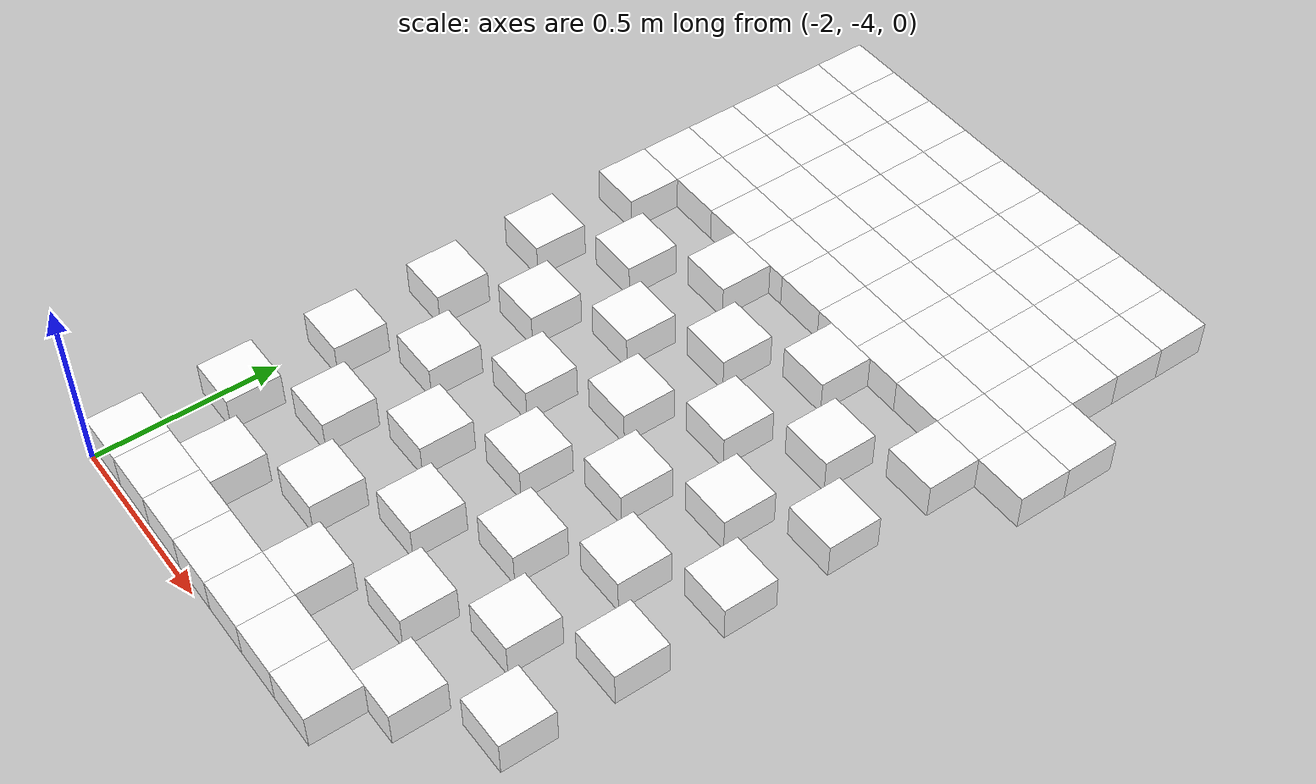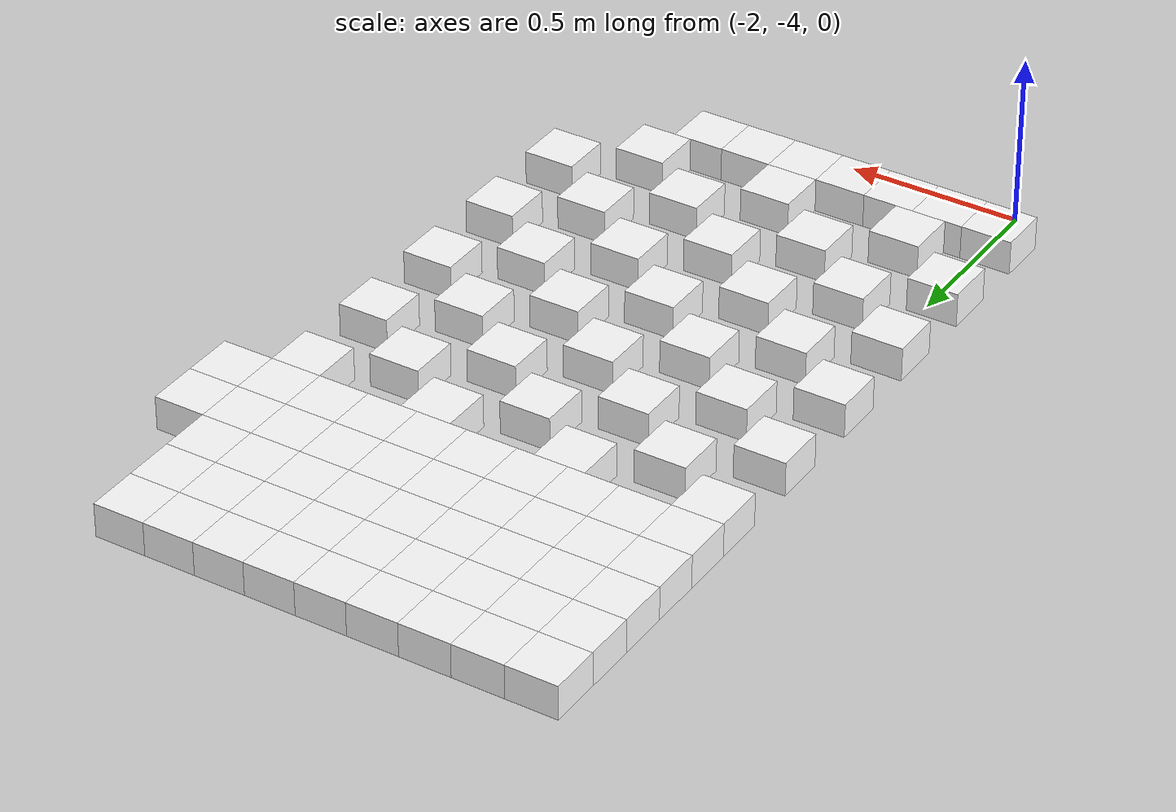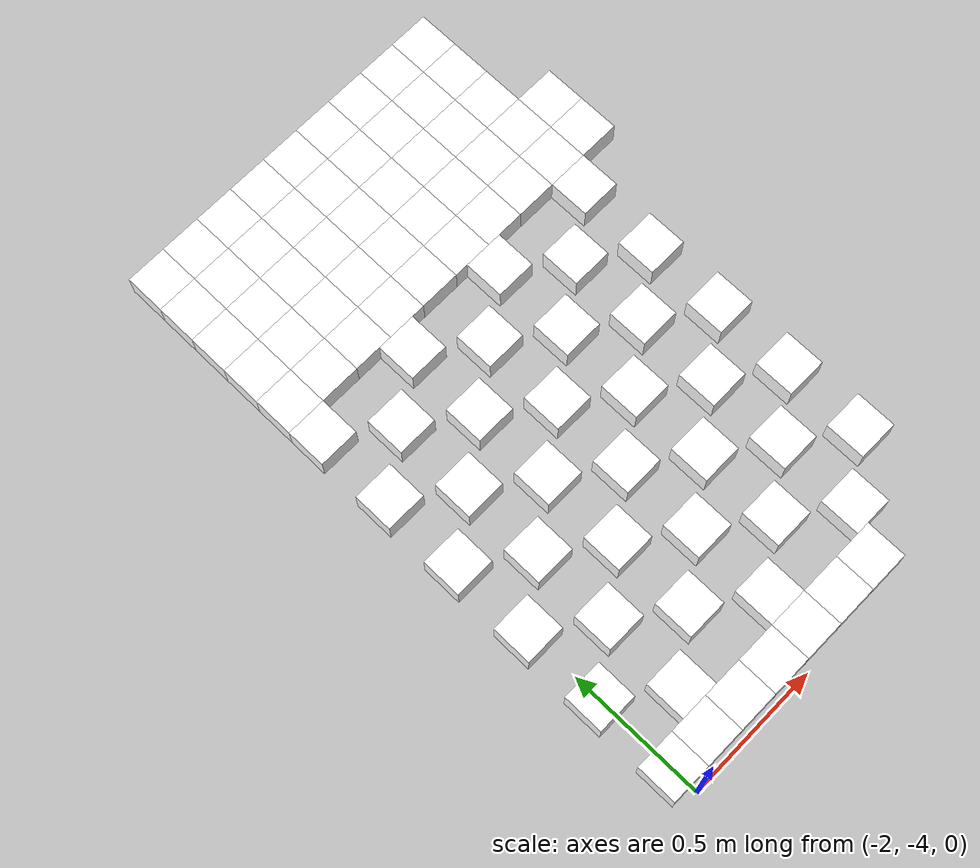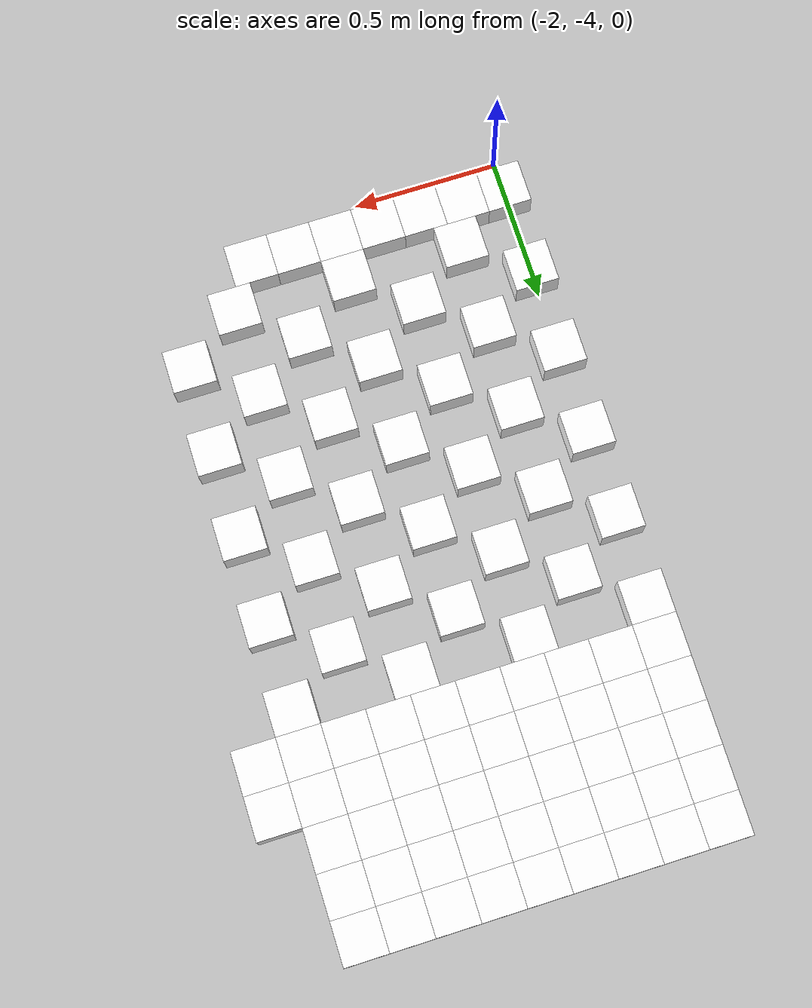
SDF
<sdf version="1.7">
 <world name="default">
  <include><uri>model://sun</uri></include>
  <model name="static_environment">
   <static>true</static>
   <link name="region_15">
    <pose>-2.0002002058652883 -1.6499999910928018 0.0 0.0 0.0 4.7123</pose>
    <collision name="region_15_collision">
     <geometry><box><size>0.15 0.15 0.1</size></box></geometry>
     <surface><friction><ode><mu>1.0</mu><mu2>1.0</mu2></ode></friction></surface>
    </collision>
    <visual name="region_15_visual">
     <geometry><box><size>0.15 0.15 0.1</size></box></geometry>
     <material><ambient>1.0 1.0 1.0 1.0</ambient><diffuse>1.0 1.0 1.0 1.0</diffuse></material>
    </visual>
   </link>
   <link name="region_16">
    <pose>-2.000213552922974 -1.7999999904989887 0.0 0.0 0.0 4.7123</pose>
    <collision name="region_16_collision">
     <geometry><box><size>0.15 0.15 0.1</size></box></geometry>
     <surface><friction><ode><mu>1.0</mu><mu2>1.0</mu2></ode></friction></surface>
    </collision>
    <visual name="region_16_visual">
     <geometry><box><size>0.15 0.15 0.1</size></box></geometry>
     <material><ambient>1.0 1.0 1.0 1.0</ambient><diffuse>1.0 1.0 1.0 1.0</diffuse></material>
    </visual>
   </link>
   <link name="region_17">
    <pose>-2.00022689998066 -1.9499999899051756 0.0 0.0 0.0 4.7123</pose>
    <collision name="region_17_collision">
     <geometry><box><size>0.15 0.15 0.1</size></box></geometry>
     <surface><friction><ode><mu>1.0</mu><mu2>1.0</mu2></ode></friction></surface>
    </collision>
    <visual name="region_17_visual">
     <geometry><box><size>0.15 0.15 0.1</size></box></geometry>
     <material><ambient>1.0 1.0 1.0 1.0</ambient><diffuse>1.0 1.0 1.0 1.0</diffuse></material>
    </visual>
   </link>
   <link name="region_18">
    <pose>-2.0002402470383456 -2.099999989311362 0.0 0.0 0.0 4.7123</pose>
    <collision name="region_18_collision">
     <geometry><box><size>0.15 0.15 0.1</size></box></geometry>
     <surface><friction><ode><mu>1.0</mu><mu2>1.0</mu2></ode></friction></surface>
    </collision>
    <visual name="region_18_visual">
     <geometry><box><size>0.15 0.15 0.1</size></box></geometry>
     <material><ambient>1.0 1.0 1.0 1.0</ambient><diffuse>1.0 1.0 1.0 1.0</diffuse></material>
    </visual>
   </link>
   <link name="region_19">
    <pose>-2.0002535940960318 -2.249999988717549 0.0 0.0 0.0 4.7123</pose>
    <collision name="region_19_collision">
     <geometry><box><size>0.15 0.15 0.1</size></box></geometry>
     <surface><friction><ode><mu>1.0</mu><mu2>1.0</mu2></ode></friction></surface>
    </collision>
    <visual name="region_19_visual">
     <geometry><box><size>0.15 0.15 0.1</size></box></geometry>
     <material><ambient>1.0 1.0 1.0 1.0</ambient><diffuse>1.0 1.0 1.0 1.0</diffuse></material>
    </visual>
   </link>
   <link name="region_35">
    <pose>-1.8502002064591012 -1.6500133381504876 0.0 0.0 0.0 4.7123</pose>
    <collision name="region_35_collision">
     <geometry><box><size>0.15 0.15 0.1</size></box></geometry>
     <surface><friction><ode><mu>1.0</mu><mu2>1.0</mu2></ode></friction></surface>
    </collision>
    <visual name="region_35_visual">
     <geometry><box><size>0.15 0.15 0.1</size></box></geometry>
     <material><ambient>1.0 1.0 1.0 1.0</ambient><diffuse>1.0 1.0 1.0 1.0</diffuse></material>
    </visual>
   </link>
   <link name="region_36">
    <pose>-1.8502135535167872 -1.8000133375566745 0.0 0.0 0.0 4.7123</pose>
    <collision name="region_36_collision">
     <geometry><box><size>0.15 0.15 0.1</size></box></geometry>
     <surface><friction><ode><mu>1.0</mu><mu2>1.0</mu2></ode></friction></surface>
    </collision>
    <visual name="region_36_visual">
     <geometry><box><size>0.15 0.15 0.1</size></box></geometry>
     <material><ambient>1.0 1.0 1.0 1.0</ambient><diffuse>1.0 1.0 1.0 1.0</diffuse></material>
    </visual>
   </link>
   <link name="region_37">
    <pose>-1.8502269005744731 -1.9500133369628614 0.0 0.0 0.0 4.7123</pose>
    <collision name="region_37_collision">
     <geometry><box><size>0.15 0.15 0.1</size></box></geometry>
     <surface><friction><ode><mu>1.0</mu><mu2>1.0</mu2></ode></friction></surface>
    </collision>
    <visual name="region_37_visual">
     <geometry><box><size>0.15 0.15 0.1</size></box></geometry>
     <material><ambient>1.0 1.0 1.0 1.0</ambient><diffuse>1.0 1.0 1.0 1.0</diffuse></material>
    </visual>
   </link>
   <link name="region_38">
    <pose>-1.8502402476321589 -2.100013336369048 0.0 0.0 0.0 4.7123</pose>
    <collision name="region_38_collision">
     <geometry><box><size>0.15 0.15 0.1</size></box></geometry>
     <surface><friction><ode><mu>1.0</mu><mu2>1.0</mu2></ode></friction></surface>
    </collision>
    <visual name="region_38_visual">
     <geometry><box><size>0.15 0.15 0.1</size></box></geometry>
     <material><ambient>1.0 1.0 1.0 1.0</ambient><diffuse>1.0 1.0 1.0 1.0</diffuse></material>
    </visual>
   </link>
   <link name="region_39">
    <pose>-1.8502535946898448 -2.2500133357752348 0.0 0.0 0.0 4.7123</pose>
    <collision name="region_39_collision">
     <geometry><box><size>0.15 0.15 0.1</size></box></geometry>
     <surface><friction><ode><mu>1.0</mu><mu2>1.0</mu2></ode></friction></surface>
    </collision>
    <visual name="region_39_visual">
     <geometry><box><size>0.15 0.15 0.1</size></box></geometry>
     <material><ambient>1.0 1.0 1.0 1.0</ambient><diffuse>1.0 1.0 1.0 1.0</diffuse></material>
    </visual>
   </link>
   <link name="region_55">
    <pose>-1.7002002070529145 -1.6500266852081737 0.0 0.0 0.0 4.7123</pose>
    <collision name="region_55_collision">
     <geometry><box><size>0.15 0.15 0.1</size></box></geometry>
     <surface><friction><ode><mu>1.0</mu><mu2>1.0</mu2></ode></friction></surface>
    </collision>
    <visual name="region_55_visual">
     <geometry><box><size>0.15 0.15 0.1</size></box></geometry>
     <material><ambient>1.0 1.0 1.0 1.0</ambient><diffuse>1.0 1.0 1.0 1.0</diffuse></material>
    </visual>
   </link>
   <link name="region_56">
    <pose>-1.7002135541106003 -1.8000266846143607 0.0 0.0 0.0 4.7123</pose>
    <collision name="region_56_collision">
     <geometry><box><size>0.15 0.15 0.1</size></box></geometry>
     <surface><friction><ode><mu>1.0</mu><mu2>1.0</mu2></ode></friction></surface>
    </collision>
    <visual name="region_56_visual">
     <geometry><box><size>0.15 0.15 0.1</size></box></geometry>
     <material><ambient>1.0 1.0 1.0 1.0</ambient><diffuse>1.0 1.0 1.0 1.0</diffuse></material>
    </visual>
   </link>
   <link name="region_57">
    <pose>-1.7002269011682862 -1.9500266840205476 0.0 0.0 0.0 4.7123</pose>
    <collision name="region_57_collision">
     <geometry><box><size>0.15 0.15 0.1</size></box></geometry>
     <surface><friction><ode><mu>1.0</mu><mu2>1.0</mu2></ode></friction></surface>
    </collision>
    <visual name="region_57_visual">
     <geometry><box><size>0.15 0.15 0.1</size></box></geometry>
     <material><ambient>1.0 1.0 1.0 1.0</ambient><diffuse>1.0 1.0 1.0 1.0</diffuse></material>
    </visual>
   </link>
   <link name="region_58">
    <pose>-1.7002402482259722 -2.100026683426734 0.0 0.0 0.0 4.7123</pose>
    <collision name="region_58_collision">
     <geometry><box><size>0.15 0.15 0.1</size></box></geometry>
     <surface><friction><ode><mu>1.0</mu><mu2>1.0</mu2></ode></friction></surface>
    </collision>
    <visual name="region_58_visual">
     <geometry><box><size>0.15 0.15 0.1</size></box></geometry>
     <material><ambient>1.0 1.0 1.0 1.0</ambient><diffuse>1.0 1.0 1.0 1.0</diffuse></material>
    </visual>
   </link>
   <link name="region_59">
    <pose>-1.700253595283658 -2.250026682832921 0.0 0.0 0.0 4.7123</pose>
    <collision name="region_59_collision">
     <geometry><box><size>0.15 0.15 0.1</size></box></geometry>
     <surface><friction><ode><mu>1.0</mu><mu2>1.0</mu2></ode></friction></surface>
    </collision>
    <visual name="region_59_visual">
     <geometry><box><size>0.15 0.15 0.1</size></box></geometry>
     <material><ambient>1.0 1.0 1.0 1.0</ambient><diffuse>1.0 1.0 1.0 1.0</diffuse></material>
    </visual>
   </link>
   <link name="region_75">
    <pose>-1.5502002076467276 -1.6500400322658595 0.0 0.0 0.0 4.7123</pose>
    <collision name="region_75_collision">
     <geometry><box><size>0.15 0.15 0.1</size></box></geometry>
     <surface><friction><ode><mu>1.0</mu><mu2>1.0</mu2></ode></friction></surface>
    </collision>
    <visual name="region_75_visual">
     <geometry><box><size>0.15 0.15 0.1</size></box></geometry>
     <material><ambient>1.0 1.0 1.0 1.0</ambient><diffuse>1.0 1.0 1.0 1.0</diffuse></material>
    </visual>
   </link>
   <link name="region_76">
    <pose>-1.5502135547044136 -1.8000400316720464 0.0 0.0 0.0 4.7123</pose>
    <collision name="region_76_collision">
     <geometry><box><size>0.15 0.15 0.1</size></box></geometry>
     <surface><friction><ode><mu>1.0</mu><mu2>1.0</mu2></ode></friction></surface>
    </collision>
    <visual name="region_76_visual">
     <geometry><box><size>0.15 0.15 0.1</size></box></geometry>
     <material><ambient>1.0 1.0 1.0 1.0</ambient><diffuse>1.0 1.0 1.0 1.0</diffuse></material>
    </visual>
   </link>
   <link name="region_77">
    <pose>-1.5502269017620995 -1.9500400310782333 0.0 0.0 0.0 4.7123</pose>
    <collision name="region_77_collision">
     <geometry><box><size>0.15 0.15 0.1</size></box></geometry>
     <surface><friction><ode><mu>1.0</mu><mu2>1.0</mu2></ode></friction></surface>
    </collision>
    <visual name="region_77_visual">
     <geometry><box><size>0.15 0.15 0.1</size></box></geometry>
     <material><ambient>1.0 1.0 1.0 1.0</ambient><diffuse>1.0 1.0 1.0 1.0</diffuse></material>
    </visual>
   </link>
   <link name="region_78">
    <pose>-1.5502402488197853 -2.10004003048442 0.0 0.0 0.0 4.7123</pose>
    <collision name="region_78_collision">
     <geometry><box><size>0.15 0.15 0.1</size></box></geometry>
     <surface><friction><ode><mu>1.0</mu><mu2>1.0</mu2></ode></friction></surface>
    </collision>
    <visual name="region_78_visual">
     <geometry><box><size>0.15 0.15 0.1</size></box></geometry>
     <material><ambient>1.0 1.0 1.0 1.0</ambient><diffuse>1.0 1.0 1.0 1.0</diffuse></material>
    </visual>
   </link>
   <link name="region_79">
    <pose>-1.5502535958774712 -2.2500400298906067 0.0 0.0 0.0 4.7123</pose>
    <collision name="region_79_collision">
     <geometry><box><size>0.15 0.15 0.1</size></box></geometry>
     <surface><friction><ode><mu>1.0</mu><mu2>1.0</mu2></ode></friction></surface>
    </collision>
    <visual name="region_79_visual">
     <geometry><box><size>0.15 0.15 0.1</size></box></geometry>
     <material><ambient>1.0 1.0 1.0 1.0</ambient><diffuse>1.0 1.0 1.0 1.0</diffuse></material>
    </visual>
   </link>
   <link name="region_95">
    <pose>-1.4002002082405407 -1.6500533793235452 0.0 0.0 0.0 4.7123</pose>
    <collision name="region_95_collision">
     <geometry><box><size>0.15 0.15 0.1</size></box></geometry>
     <surface><friction><ode><mu>1.0</mu><mu2>1.0</mu2></ode></friction></surface>
    </collision>
    <visual name="region_95_visual">
     <geometry><box><size>0.15 0.15 0.1</size></box></geometry>
     <material><ambient>1.0 1.0 1.0 1.0</ambient><diffuse>1.0 1.0 1.0 1.0</diffuse></material>
    </visual>
   </link>
   <link name="region_96">
    <pose>-1.4002135552982267 -1.8000533787297321 0.0 0.0 0.0 4.7123</pose>
    <collision name="region_96_collision">
     <geometry><box><size>0.15 0.15 0.1</size></box></geometry>
     <surface><friction><ode><mu>1.0</mu><mu2>1.0</mu2></ode></friction></surface>
    </collision>
    <visual name="region_96_visual">
     <geometry><box><size>0.15 0.15 0.1</size></box></geometry>
     <material><ambient>1.0 1.0 1.0 1.0</ambient><diffuse>1.0 1.0 1.0 1.0</diffuse></material>
    </visual>
   </link>
   <link name="region_97">
    <pose>-1.4002269023559126 -1.950053378135919 0.0 0.0 0.0 4.7123</pose>
    <collision name="region_97_collision">
     <geometry><box><size>0.15 0.15 0.1</size></box></geometry>
     <surface><friction><ode><mu>1.0</mu><mu2>1.0</mu2></ode></friction></surface>
    </collision>
    <visual name="region_97_visual">
     <geometry><box><size>0.15 0.15 0.1</size></box></geometry>
     <material><ambient>1.0 1.0 1.0 1.0</ambient><diffuse>1.0 1.0 1.0 1.0</diffuse></material>
    </visual>
   </link>
   <link name="region_98">
    <pose>-1.4002402494135984 -2.1000533775421055 0.0 0.0 0.0 4.7123</pose>
    <collision name="region_98_collision">
     <geometry><box><size>0.15 0.15 0.1</size></box></geometry>
     <surface><friction><ode><mu>1.0</mu><mu2>1.0</mu2></ode></friction></surface>
    </collision>
    <visual name="region_98_visual">
     <geometry><box><size>0.15 0.15 0.1</size></box></geometry>
     <material><ambient>1.0 1.0 1.0 1.0</ambient><diffuse>1.0 1.0 1.0 1.0</diffuse></material>
    </visual>
   </link>
   <link name="region_99">
    <pose>-1.4002535964712843 -2.2500533769482924 0.0 0.0 0.0 4.7123</pose>
    <collision name="region_99_collision">
     <geometry><box><size>0.15 0.15 0.1</size></box></geometry>
     <surface><friction><ode><mu>1.0</mu><mu2>1.0</mu2></ode></friction></surface>
    </collision>
    <visual name="region_99_visual">
     <geometry><box><size>0.15 0.15 0.1</size></box></geometry>
     <material><ambient>1.0 1.0 1.0 1.0</ambient><diffuse>1.0 1.0 1.0 1.0</diffuse></material>
    </visual>
   </link>
   <link name="region_115">
    <pose>-1.250200208834354 -1.6500667263812314 0.0 0.0 0.0 4.7123</pose>
    <collision name="region_115_collision">
     <geometry><box><size>0.15 0.15 0.1</size></box></geometry>
     <surface><friction><ode><mu>1.0</mu><mu2>1.0</mu2></ode></friction></surface>
    </collision>
    <visual name="region_115_visual">
     <geometry><box><size>0.15 0.15 0.1</size></box></geometry>
     <material><ambient>1.0 1.0 1.0 1.0</ambient><diffuse>1.0 1.0 1.0 1.0</diffuse></material>
    </visual>
   </link>
   <link name="region_116">
    <pose>-1.25021355589204 -1.8000667257874183 0.0 0.0 0.0 4.7123</pose>
    <collision name="region_116_collision">
     <geometry><box><size>0.15 0.15 0.1</size></box></geometry>
     <surface><friction><ode><mu>1.0</mu><mu2>1.0</mu2></ode></friction></surface>
    </collision>
    <visual name="region_116_visual">
     <geometry><box><size>0.15 0.15 0.1</size></box></geometry>
     <material><ambient>1.0 1.0 1.0 1.0</ambient><diffuse>1.0 1.0 1.0 1.0</diffuse></material>
    </visual>
   </link>
   <link name="region_117">
    <pose>-1.2502269029497257 -1.9500667251936052 0.0 0.0 0.0 4.7123</pose>
    <collision name="region_117_collision">
     <geometry><box><size>0.15 0.15 0.1</size></box></geometry>
     <surface><friction><ode><mu>1.0</mu><mu2>1.0</mu2></ode></friction></surface>
    </collision>
    <visual name="region_117_visual">
     <geometry><box><size>0.15 0.15 0.1</size></box></geometry>
     <material><ambient>1.0 1.0 1.0 1.0</ambient><diffuse>1.0 1.0 1.0 1.0</diffuse></material>
    </visual>
   </link>
   <link name="region_118">
    <pose>-1.2502402500074117 -2.1000667245997917 0.0 0.0 0.0 4.7123</pose>
    <collision name="region_118_collision">
     <geometry><box><size>0.15 0.15 0.1</size></box></geometry>
     <surface><friction><ode><mu>1.0</mu><mu2>1.0</mu2></ode></friction></surface>
    </collision>
    <visual name="region_118_visual">
     <geometry><box><size>0.15 0.15 0.1</size></box></geometry>
     <material><ambient>1.0 1.0 1.0 1.0</ambient><diffuse>1.0 1.0 1.0 1.0</diffuse></material>
    </visual>
   </link>
   <link name="region_119">
    <pose>-1.2502535970650976 -2.2500667240059786 0.0 0.0 0.0 4.7123</pose>
    <collision name="region_119_collision">
     <geometry><box><size>0.15 0.15 0.1</size></box></geometry>
     <surface><friction><ode><mu>1.0</mu><mu2>1.0</mu2></ode></friction></surface>
    </collision>
    <visual name="region_119_visual">
     <geometry><box><size>0.15 0.15 0.1</size></box></geometry>
     <material><ambient>1.0 1.0 1.0 1.0</ambient><diffuse>1.0 1.0 1.0 1.0</diffuse></material>
    </visual>
   </link>
   <link name="region_135">
    <pose>-1.100200209428167 -1.6500800734389172 0.0 0.0 0.0 4.7123</pose>
    <collision name="region_135_collision">
     <geometry><box><size>0.15 0.15 0.1</size></box></geometry>
     <surface><friction><ode><mu>1.0</mu><mu2>1.0</mu2></ode></friction></surface>
    </collision>
    <visual name="region_135_visual">
     <geometry><box><size>0.15 0.15 0.1</size></box></geometry>
     <material><ambient>1.0 1.0 1.0 1.0</ambient><diffuse>1.0 1.0 1.0 1.0</diffuse></material>
    </visual>
   </link>
   <link name="region_136">
    <pose>-1.100213556485853 -1.800080072845104 0.0 0.0 0.0 4.7123</pose>
    <collision name="region_136_collision">
     <geometry><box><size>0.15 0.15 0.1</size></box></geometry>
     <surface><friction><ode><mu>1.0</mu><mu2>1.0</mu2></ode></friction></surface>
    </collision>
    <visual name="region_136_visual">
     <geometry><box><size>0.15 0.15 0.1</size></box></geometry>
     <material><ambient>1.0 1.0 1.0 1.0</ambient><diffuse>1.0 1.0 1.0 1.0</diffuse></material>
    </visual>
   </link>
   <link name="region_137">
    <pose>-1.1002269035435388 -1.950080072251291 0.0 0.0 0.0 4.7123</pose>
    <collision name="region_137_collision">
     <geometry><box><size>0.15 0.15 0.1</size></box></geometry>
     <surface><friction><ode><mu>1.0</mu><mu2>1.0</mu2></ode></friction></surface>
    </collision>
    <visual name="region_137_visual">
     <geometry><box><size>0.15 0.15 0.1</size></box></geometry>
     <material><ambient>1.0 1.0 1.0 1.0</ambient><diffuse>1.0 1.0 1.0 1.0</diffuse></material>
    </visual>
   </link>
   <link name="region_138">
    <pose>-1.1002402506012248 -2.1000800716574775 0.0 0.0 0.0 4.7123</pose>
    <collision name="region_138_collision">
     <geometry><box><size>0.15 0.15 0.1</size></box></geometry>
     <surface><friction><ode><mu>1.0</mu><mu2>1.0</mu2></ode></friction></surface>
    </collision>
    <visual name="region_138_visual">
     <geometry><box><size>0.15 0.15 0.1</size></box></geometry>
     <material><ambient>1.0 1.0 1.0 1.0</ambient><diffuse>1.0 1.0 1.0 1.0</diffuse></material>
    </visual>
   </link>
   <link name="region_139">
    <pose>-1.1002535976589107 -2.2500800710636644 0.0 0.0 0.0 4.7123</pose>
    <collision name="region_139_collision">
     <geometry><box><size>0.15 0.15 0.1</size></box></geometry>
     <surface><friction><ode><mu>1.0</mu><mu2>1.0</mu2></ode></friction></surface>
    </collision>
    <visual name="region_139_visual">
     <geometry><box><size>0.15 0.15 0.1</size></box></geometry>
     <material><ambient>1.0 1.0 1.0 1.0</ambient><diffuse>1.0 1.0 1.0 1.0</diffuse></material>
    </visual>
   </link>
   <link name="region_155">
    <pose>-0.9502002100219802 -1.650093420496603 0.0 0.0 0.0 4.7123</pose>
    <collision name="region_155_collision">
     <geometry><box><size>0.15 0.15 0.1</size></box></geometry>
     <surface><friction><ode><mu>1.0</mu><mu2>1.0</mu2></ode></friction></surface>
    </collision>
    <visual name="region_155_visual">
     <geometry><box><size>0.15 0.15 0.1</size></box></geometry>
     <material><ambient>1.0 1.0 1.0 1.0</ambient><diffuse>1.0 1.0 1.0 1.0</diffuse></material>
    </visual>
   </link>
   <link name="region_156">
    <pose>-0.9502135570796661 -1.8000934199027898 0.0 0.0 0.0 4.7123</pose>
    <collision name="region_156_collision">
     <geometry><box><size>0.15 0.15 0.1</size></box></geometry>
     <surface><friction><ode><mu>1.0</mu><mu2>1.0</mu2></ode></friction></surface>
    </collision>
    <visual name="region_156_visual">
     <geometry><box><size>0.15 0.15 0.1</size></box></geometry>
     <material><ambient>1.0 1.0 1.0 1.0</ambient><diffuse>1.0 1.0 1.0 1.0</diffuse></material>
    </visual>
   </link>
   <link name="region_157">
    <pose>-0.9502269041373519 -1.9500934193089767 0.0 0.0 0.0 4.7123</pose>
    <collision name="region_157_collision">
     <geometry><box><size>0.15 0.15 0.1</size></box></geometry>
     <surface><friction><ode><mu>1.0</mu><mu2>1.0</mu2></ode></friction></surface>
    </collision>
    <visual name="region_157_visual">
     <geometry><box><size>0.15 0.15 0.1</size></box></geometry>
     <material><ambient>1.0 1.0 1.0 1.0</ambient><diffuse>1.0 1.0 1.0 1.0</diffuse></material>
    </visual>
   </link>
   <link name="region_158">
    <pose>-0.9502402511950379 -2.100093418715163 0.0 0.0 0.0 4.7123</pose>
    <collision name="region_158_collision">
     <geometry><box><size>0.15 0.15 0.1</size></box></geometry>
     <surface><friction><ode><mu>1.0</mu><mu2>1.0</mu2></ode></friction></surface>
    </collision>
    <visual name="region_158_visual">
     <geometry><box><size>0.15 0.15 0.1</size></box></geometry>
     <material><ambient>1.0 1.0 1.0 1.0</ambient><diffuse>1.0 1.0 1.0 1.0</diffuse></material>
    </visual>
   </link>
   <link name="region_159">
    <pose>-0.9502535982527236 -2.25009341812135 0.0 0.0 0.0 4.7123</pose>
    <collision name="region_159_collision">
     <geometry><box><size>0.15 0.15 0.1</size></box></geometry>
     <surface><friction><ode><mu>1.0</mu><mu2>1.0</mu2></ode></friction></surface>
    </collision>
    <visual name="region_159_visual">
     <geometry><box><size>0.15 0.15 0.1</size></box></geometry>
     <material><ambient>1.0 1.0 1.0 1.0</ambient><diffuse>1.0 1.0 1.0 1.0</diffuse></material>
    </visual>
   </link>
   <link name="region_175">
    <pose>-0.8002002106157935 -1.6501067675542886 0.0 0.0 0.0 4.7123</pose>
    <collision name="region_175_collision">
     <geometry><box><size>0.15 0.15 0.1</size></box></geometry>
     <surface><friction><ode><mu>1.0</mu><mu2>1.0</mu2></ode></friction></surface>
    </collision>
    <visual name="region_175_visual">
     <geometry><box><size>0.15 0.15 0.1</size></box></geometry>
     <material><ambient>1.0 1.0 1.0 1.0</ambient><diffuse>1.0 1.0 1.0 1.0</diffuse></material>
    </visual>
   </link>
   <link name="region_176">
    <pose>-0.8002135576734795 -1.8001067669604756 0.0 0.0 0.0 4.7123</pose>
    <collision name="region_176_collision">
     <geometry><box><size>0.15 0.15 0.1</size></box></geometry>
     <surface><friction><ode><mu>1.0</mu><mu2>1.0</mu2></ode></friction></surface>
    </collision>
    <visual name="region_176_visual">
     <geometry><box><size>0.15 0.15 0.1</size></box></geometry>
     <material><ambient>1.0 1.0 1.0 1.0</ambient><diffuse>1.0 1.0 1.0 1.0</diffuse></material>
    </visual>
   </link>
   <link name="region_177">
    <pose>-0.8002269047311652 -1.9501067663666625 0.0 0.0 0.0 4.7123</pose>
    <collision name="region_177_collision">
     <geometry><box><size>0.15 0.15 0.1</size></box></geometry>
     <surface><friction><ode><mu>1.0</mu><mu2>1.0</mu2></ode></friction></surface>
    </collision>
    <visual name="region_177_visual">
     <geometry><box><size>0.15 0.15 0.1</size></box></geometry>
     <material><ambient>1.0 1.0 1.0 1.0</ambient><diffuse>1.0 1.0 1.0 1.0</diffuse></material>
    </visual>
   </link>
   <link name="region_178">
    <pose>-0.8002402517888512 -2.100106765772849 0.0 0.0 0.0 4.7123</pose>
    <collision name="region_178_collision">
     <geometry><box><size>0.15 0.15 0.1</size></box></geometry>
     <surface><friction><ode><mu>1.0</mu><mu2>1.0</mu2></ode></friction></surface>
    </collision>
    <visual name="region_178_visual">
     <geometry><box><size>0.15 0.15 0.1</size></box></geometry>
     <material><ambient>1.0 1.0 1.0 1.0</ambient><diffuse>1.0 1.0 1.0 1.0</diffuse></material>
    </visual>
   </link>
   <link name="region_179">
    <pose>-0.8002535988465369 -2.250106765179036 0.0 0.0 0.0 4.7123</pose>
    <collision name="region_179_collision">
     <geometry><box><size>0.15 0.15 0.1</size></box></geometry>
     <surface><friction><ode><mu>1.0</mu><mu2>1.0</mu2></ode></friction></surface>
    </collision>
    <visual name="region_179_visual">
     <geometry><box><size>0.15 0.15 0.1</size></box></geometry>
     <material><ambient>1.0 1.0 1.0 1.0</ambient><diffuse>1.0 1.0 1.0 1.0</diffuse></material>
    </visual>
   </link>
   <link name="region_198">
    <pose>-0.6502402523826645 -2.100120112830535 0.0 0.0 0.0 4.7123</pose>
    <collision name="region_198_collision">
     <geometry><box><size>0.15 0.15 0.1</size></box></geometry>
     <surface><friction><ode><mu>1.0</mu><mu2>1.0</mu2></ode></friction></surface>
    </collision>
    <visual name="region_198_visual">
     <geometry><box><size>0.15 0.15 0.1</size></box></geometry>
     <material><ambient>1.0 1.0 1.0 1.0</ambient><diffuse>1.0 1.0 1.0 1.0</diffuse></material>
    </visual>
   </link>
   <link name="region_199">
    <pose>-0.6502535994403502 -2.250120112236722 0.0 0.0 0.0 4.7123</pose>
    <collision name="region_199_collision">
     <geometry><box><size>0.15 0.15 0.1</size></box></geometry>
     <surface><friction><ode><mu>1.0</mu><mu2>1.0</mu2></ode></friction></surface>
    </collision>
    <visual name="region_199_visual">
     <geometry><box><size>0.15 0.15 0.1</size></box></geometry>
     <material><ambient>1.0 1.0 1.0 1.0</ambient><diffuse>1.0 1.0 1.0 1.0</diffuse></material>
    </visual>
   </link>
   <link name="region_800">
    <pose>-2.0002669411537175 -2.3999999881237364 0.0 0.0 0.0 4.7123</pose>
    <collision name="region_800_collision">
     <geometry><box><size>0.15 0.15 0.1</size></box></geometry>
     <surface><friction><ode><mu>1.0</mu><mu2>1.0</mu2></ode></friction></surface>
    </collision>
    <visual name="region_800_visual">
     <geometry><box><size>0.15 0.15 0.1</size></box></geometry>
     <material><ambient>1.0 1.0 1.0 1.0</ambient><diffuse>1.0 1.0 1.0 1.0</diffuse></material>
    </visual>
   </link>
   <link name="region_801">
    <pose>-2.0002936352690894 -2.69999998693611 0.0 0.0 0.0 4.7123</pose>
    <collision name="region_801_collision">
     <geometry><box><size>0.15 0.15 0.1</size></box></geometry>
     <surface><friction><ode><mu>1.0</mu><mu2>1.0</mu2></ode></friction></surface>
    </collision>
    <visual name="region_801_visual">
     <geometry><box><size>0.15 0.15 0.1</size></box></geometry>
     <material><ambient>1.0 1.0 1.0 1.0</ambient><diffuse>1.0 1.0 1.0 1.0</diffuse></material>
    </visual>
   </link>
   <link name="region_802">
    <pose>-2.000320329384461 -2.9999999857484836 0.0 0.0 0.0 4.7123</pose>
    <collision name="region_802_collision">
     <geometry><box><size>0.15 0.15 0.1</size></box></geometry>
     <surface><friction><ode><mu>1.0</mu><mu2>1.0</mu2></ode></friction></surface>
    </collision>
    <visual name="region_802_visual">
     <geometry><box><size>0.15 0.15 0.1</size></box></geometry>
     <material><ambient>1.0 1.0 1.0 1.0</ambient><diffuse>1.0 1.0 1.0 1.0</diffuse></material>
    </visual>
   </link>
   <link name="region_803">
    <pose>-2.000347023499833 -3.299999984560857 0.0 0.0 0.0 4.7123</pose>
    <collision name="region_803_collision">
     <geometry><box><size>0.15 0.15 0.1</size></box></geometry>
     <surface><friction><ode><mu>1.0</mu><mu2>1.0</mu2></ode></friction></surface>
    </collision>
    <visual name="region_803_visual">
     <geometry><box><size>0.15 0.15 0.1</size></box></geometry>
     <material><ambient>1.0 1.0 1.0 1.0</ambient><diffuse>1.0 1.0 1.0 1.0</diffuse></material>
    </visual>
   </link>
   <link name="region_804">
    <pose>-2.0003737176152043 -3.5999999833732317 0.0 0.0 0.0 4.7123</pose>
    <collision name="region_804_collision">
     <geometry><box><size>0.15 0.15 0.1</size></box></geometry>
     <surface><friction><ode><mu>1.0</mu><mu2>1.0</mu2></ode></friction></surface>
    </collision>
    <visual name="region_804_visual">
     <geometry><box><size>0.15 0.15 0.1</size></box></geometry>
     <material><ambient>1.0 1.0 1.0 1.0</ambient><diffuse>1.0 1.0 1.0 1.0</diffuse></material>
    </visual>
   </link>
   <link name="region_805">
    <pose>-1.8002802890031542 -2.5500177836068376 0.0 0.0 0.0 4.7123</pose>
    <collision name="region_805_collision">
     <geometry><box><size>0.15 0.15 0.1</size></box></geometry>
     <surface><friction><ode><mu>1.0</mu><mu2>1.0</mu2></ode></friction></surface>
    </collision>
    <visual name="region_805_visual">
     <geometry><box><size>0.15 0.15 0.1</size></box></geometry>
     <material><ambient>1.0 1.0 1.0 1.0</ambient><diffuse>1.0 1.0 1.0 1.0</diffuse></material>
    </visual>
   </link>
   <link name="region_806">
    <pose>-1.800306983118526 -2.850017782419211 0.0 0.0 0.0 4.7123</pose>
    <collision name="region_806_collision">
     <geometry><box><size>0.15 0.15 0.1</size></box></geometry>
     <surface><friction><ode><mu>1.0</mu><mu2>1.0</mu2></ode></friction></surface>
    </collision>
    <visual name="region_806_visual">
     <geometry><box><size>0.15 0.15 0.1</size></box></geometry>
     <material><ambient>1.0 1.0 1.0 1.0</ambient><diffuse>1.0 1.0 1.0 1.0</diffuse></material>
    </visual>
   </link>
   <link name="region_807">
    <pose>-1.8003336772338978 -3.150017781231585 0.0 0.0 0.0 4.7123</pose>
    <collision name="region_807_collision">
     <geometry><box><size>0.15 0.15 0.1</size></box></geometry>
     <surface><friction><ode><mu>1.0</mu><mu2>1.0</mu2></ode></friction></surface>
    </collision>
    <visual name="region_807_visual">
     <geometry><box><size>0.15 0.15 0.1</size></box></geometry>
     <material><ambient>1.0 1.0 1.0 1.0</ambient><diffuse>1.0 1.0 1.0 1.0</diffuse></material>
    </visual>
   </link>
   <link name="region_808">
    <pose>-1.8003603713492695 -3.4500177800439586 0.0 0.0 0.0 4.7123</pose>
    <collision name="region_808_collision">
     <geometry><box><size>0.15 0.15 0.1</size></box></geometry>
     <surface><friction><ode><mu>1.0</mu><mu2>1.0</mu2></ode></friction></surface>
    </collision>
    <visual name="region_808_visual">
     <geometry><box><size>0.15 0.15 0.1</size></box></geometry>
     <material><ambient>1.0 1.0 1.0 1.0</ambient><diffuse>1.0 1.0 1.0 1.0</diffuse></material>
    </visual>
   </link>
   <link name="region_809">
    <pose>-1.8003870654646412 -3.7500177788563334 0.0 0.0 0.0 4.7123</pose>
    <collision name="region_809_collision">
     <geometry><box><size>0.15 0.15 0.1</size></box></geometry>
     <surface><friction><ode><mu>1.0</mu><mu2>1.0</mu2></ode></friction></surface>
    </collision>
    <visual name="region_809_visual">
     <geometry><box><size>0.15 0.15 0.1</size></box></geometry>
     <material><ambient>1.0 1.0 1.0 1.0</ambient><diffuse>1.0 1.0 1.0 1.0</diffuse></material>
    </visual>
   </link>
   <link name="region_810">
    <pose>-1.6002669427372194 -2.4000355802775655 0.0 0.0 0.0 4.7123</pose>
    <collision name="region_810_collision">
     <geometry><box><size>0.15 0.15 0.1</size></box></geometry>
     <surface><friction><ode><mu>1.0</mu><mu2>1.0</mu2></ode></friction></surface>
    </collision>
    <visual name="region_810_visual">
     <geometry><box><size>0.15 0.15 0.1</size></box></geometry>
     <material><ambient>1.0 1.0 1.0 1.0</ambient><diffuse>1.0 1.0 1.0 1.0</diffuse></material>
    </visual>
   </link>
   <link name="region_811">
    <pose>-1.600293636852591 -2.7000355790899393 0.0 0.0 0.0 4.7123</pose>
    <collision name="region_811_collision">
     <geometry><box><size>0.15 0.15 0.1</size></box></geometry>
     <surface><friction><ode><mu>1.0</mu><mu2>1.0</mu2></ode></friction></surface>
    </collision>
    <visual name="region_811_visual">
     <geometry><box><size>0.15 0.15 0.1</size></box></geometry>
     <material><ambient>1.0 1.0 1.0 1.0</ambient><diffuse>1.0 1.0 1.0 1.0</diffuse></material>
    </visual>
   </link>
   <link name="region_812">
    <pose>-1.6003203309679628 -3.0000355779023127 0.0 0.0 0.0 4.7123</pose>
    <collision name="region_812_collision">
     <geometry><box><size>0.15 0.15 0.1</size></box></geometry>
     <surface><friction><ode><mu>1.0</mu><mu2>1.0</mu2></ode></friction></surface>
    </collision>
    <visual name="region_812_visual">
     <geometry><box><size>0.15 0.15 0.1</size></box></geometry>
     <material><ambient>1.0 1.0 1.0 1.0</ambient><diffuse>1.0 1.0 1.0 1.0</diffuse></material>
    </visual>
   </link>
   <link name="region_813">
    <pose>-1.6003470250833345 -3.300035576714686 0.0 0.0 0.0 4.7123</pose>
    <collision name="region_813_collision">
     <geometry><box><size>0.15 0.15 0.1</size></box></geometry>
     <surface><friction><ode><mu>1.0</mu><mu2>1.0</mu2></ode></friction></surface>
    </collision>
    <visual name="region_813_visual">
     <geometry><box><size>0.15 0.15 0.1</size></box></geometry>
     <material><ambient>1.0 1.0 1.0 1.0</ambient><diffuse>1.0 1.0 1.0 1.0</diffuse></material>
    </visual>
   </link>
   <link name="region_814">
    <pose>-1.6003737191987062 -3.6000355755270603 0.0 0.0 0.0 4.7123</pose>
    <collision name="region_814_collision">
     <geometry><box><size>0.15 0.15 0.1</size></box></geometry>
     <surface><friction><ode><mu>1.0</mu><mu2>1.0</mu2></ode></friction></surface>
    </collision>
    <visual name="region_814_visual">
     <geometry><box><size>0.15 0.15 0.1</size></box></geometry>
     <material><ambient>1.0 1.0 1.0 1.0</ambient><diffuse>1.0 1.0 1.0 1.0</diffuse></material>
    </visual>
   </link>
   <link name="region_815">
    <pose>-1.400280290586656 -2.5500533757606667 0.0 0.0 0.0 4.7123</pose>
    <collision name="region_815_collision">
     <geometry><box><size>0.15 0.15 0.1</size></box></geometry>
     <surface><friction><ode><mu>1.0</mu><mu2>1.0</mu2></ode></friction></surface>
    </collision>
    <visual name="region_815_visual">
     <geometry><box><size>0.15 0.15 0.1</size></box></geometry>
     <material><ambient>1.0 1.0 1.0 1.0</ambient><diffuse>1.0 1.0 1.0 1.0</diffuse></material>
    </visual>
   </link>
   <link name="region_816">
    <pose>-1.4003069847020277 -2.85005337457304 0.0 0.0 0.0 4.7123</pose>
    <collision name="region_816_collision">
     <geometry><box><size>0.15 0.15 0.1</size></box></geometry>
     <surface><friction><ode><mu>1.0</mu><mu2>1.0</mu2></ode></friction></surface>
    </collision>
    <visual name="region_816_visual">
     <geometry><box><size>0.15 0.15 0.1</size></box></geometry>
     <material><ambient>1.0 1.0 1.0 1.0</ambient><diffuse>1.0 1.0 1.0 1.0</diffuse></material>
    </visual>
   </link>
   <link name="region_817">
    <pose>-1.4003336788173995 -3.150053373385414 0.0 0.0 0.0 4.7123</pose>
    <collision name="region_817_collision">
     <geometry><box><size>0.15 0.15 0.1</size></box></geometry>
     <surface><friction><ode><mu>1.0</mu><mu2>1.0</mu2></ode></friction></surface>
    </collision>
    <visual name="region_817_visual">
     <geometry><box><size>0.15 0.15 0.1</size></box></geometry>
     <material><ambient>1.0 1.0 1.0 1.0</ambient><diffuse>1.0 1.0 1.0 1.0</diffuse></material>
    </visual>
   </link>
   <link name="region_818">
    <pose>-1.4003603729327714 -3.450053372197788 0.0 0.0 0.0 4.7123</pose>
    <collision name="region_818_collision">
     <geometry><box><size>0.15 0.15 0.1</size></box></geometry>
     <surface><friction><ode><mu>1.0</mu><mu2>1.0</mu2></ode></friction></surface>
    </collision>
    <visual name="region_818_visual">
     <geometry><box><size>0.15 0.15 0.1</size></box></geometry>
     <material><ambient>1.0 1.0 1.0 1.0</ambient><diffuse>1.0 1.0 1.0 1.0</diffuse></material>
    </visual>
   </link>
   <link name="region_819">
    <pose>-1.4003870670481429 -3.750053371010163 0.0 0.0 0.0 4.7123</pose>
    <collision name="region_819_collision">
     <geometry><box><size>0.15 0.15 0.1</size></box></geometry>
     <surface><friction><ode><mu>1.0</mu><mu2>1.0</mu2></ode></friction></surface>
    </collision>
    <visual name="region_819_visual">
     <geometry><box><size>0.15 0.15 0.1</size></box></geometry>
     <material><ambient>1.0 1.0 1.0 1.0</ambient><diffuse>1.0 1.0 1.0 1.0</diffuse></material>
    </visual>
   </link>
   <link name="region_820">
    <pose>-1.200266944320721 -2.4000711724313946 0.0 0.0 0.0 4.7123</pose>
    <collision name="region_820_collision">
     <geometry><box><size>0.15 0.15 0.1</size></box></geometry>
     <surface><friction><ode><mu>1.0</mu><mu2>1.0</mu2></ode></friction></surface>
    </collision>
    <visual name="region_820_visual">
     <geometry><box><size>0.15 0.15 0.1</size></box></geometry>
     <material><ambient>1.0 1.0 1.0 1.0</ambient><diffuse>1.0 1.0 1.0 1.0</diffuse></material>
    </visual>
   </link>
   <link name="region_821">
    <pose>-1.2002936384360927 -2.7000711712437684 0.0 0.0 0.0 4.7123</pose>
    <collision name="region_821_collision">
     <geometry><box><size>0.15 0.15 0.1</size></box></geometry>
     <surface><friction><ode><mu>1.0</mu><mu2>1.0</mu2></ode></friction></surface>
    </collision>
    <visual name="region_821_visual">
     <geometry><box><size>0.15 0.15 0.1</size></box></geometry>
     <material><ambient>1.0 1.0 1.0 1.0</ambient><diffuse>1.0 1.0 1.0 1.0</diffuse></material>
    </visual>
   </link>
   <link name="region_822">
    <pose>-1.2003203325514646 -3.0000711700561418 0.0 0.0 0.0 4.7123</pose>
    <collision name="region_822_collision">
     <geometry><box><size>0.15 0.15 0.1</size></box></geometry>
     <surface><friction><ode><mu>1.0</mu><mu2>1.0</mu2></ode></friction></surface>
    </collision>
    <visual name="region_822_visual">
     <geometry><box><size>0.15 0.15 0.1</size></box></geometry>
     <material><ambient>1.0 1.0 1.0 1.0</ambient><diffuse>1.0 1.0 1.0 1.0</diffuse></material>
    </visual>
   </link>
   <link name="region_823">
    <pose>-1.2003470266668361 -3.300071168868515 0.0 0.0 0.0 4.7123</pose>
    <collision name="region_823_collision">
     <geometry><box><size>0.15 0.15 0.1</size></box></geometry>
     <surface><friction><ode><mu>1.0</mu><mu2>1.0</mu2></ode></friction></surface>
    </collision>
    <visual name="region_823_visual">
     <geometry><box><size>0.15 0.15 0.1</size></box></geometry>
     <material><ambient>1.0 1.0 1.0 1.0</ambient><diffuse>1.0 1.0 1.0 1.0</diffuse></material>
    </visual>
   </link>
   <link name="region_824">
    <pose>-1.200373720782208 -3.60007116768089 0.0 0.0 0.0 4.7123</pose>
    <collision name="region_824_collision">
     <geometry><box><size>0.15 0.15 0.1</size></box></geometry>
     <surface><friction><ode><mu>1.0</mu><mu2>1.0</mu2></ode></friction></surface>
    </collision>
    <visual name="region_824_visual">
     <geometry><box><size>0.15 0.15 0.1</size></box></geometry>
     <material><ambient>1.0 1.0 1.0 1.0</ambient><diffuse>1.0 1.0 1.0 1.0</diffuse></material>
    </visual>
   </link>
   <link name="region_825">
    <pose>-1.000280292170158 -2.550088967914496 0.0 0.0 0.0 4.7123</pose>
    <collision name="region_825_collision">
     <geometry><box><size>0.15 0.15 0.1</size></box></geometry>
     <surface><friction><ode><mu>1.0</mu><mu2>1.0</mu2></ode></friction></surface>
    </collision>
    <visual name="region_825_visual">
     <geometry><box><size>0.15 0.15 0.1</size></box></geometry>
     <material><ambient>1.0 1.0 1.0 1.0</ambient><diffuse>1.0 1.0 1.0 1.0</diffuse></material>
    </visual>
   </link>
   <link name="region_826">
    <pose>-1.0003069862855296 -2.850088966726869 0.0 0.0 0.0 4.7123</pose>
    <collision name="region_826_collision">
     <geometry><box><size>0.15 0.15 0.1</size></box></geometry>
     <surface><friction><ode><mu>1.0</mu><mu2>1.0</mu2></ode></friction></surface>
    </collision>
    <visual name="region_826_visual">
     <geometry><box><size>0.15 0.15 0.1</size></box></geometry>
     <material><ambient>1.0 1.0 1.0 1.0</ambient><diffuse>1.0 1.0 1.0 1.0</diffuse></material>
    </visual>
   </link>
   <link name="region_827">
    <pose>-1.0003336804009013 -3.150088965539243 0.0 0.0 0.0 4.7123</pose>
    <collision name="region_827_collision">
     <geometry><box><size>0.15 0.15 0.1</size></box></geometry>
     <surface><friction><ode><mu>1.0</mu><mu2>1.0</mu2></ode></friction></surface>
    </collision>
    <visual name="region_827_visual">
     <geometry><box><size>0.15 0.15 0.1</size></box></geometry>
     <material><ambient>1.0 1.0 1.0 1.0</ambient><diffuse>1.0 1.0 1.0 1.0</diffuse></material>
    </visual>
   </link>
   <link name="region_828">
    <pose>-1.0003603745162732 -3.450088964351617 0.0 0.0 0.0 4.7123</pose>
    <collision name="region_828_collision">
     <geometry><box><size>0.15 0.15 0.1</size></box></geometry>
     <surface><friction><ode><mu>1.0</mu><mu2>1.0</mu2></ode></friction></surface>
    </collision>
    <visual name="region_828_visual">
     <geometry><box><size>0.15 0.15 0.1</size></box></geometry>
     <material><ambient>1.0 1.0 1.0 1.0</ambient><diffuse>1.0 1.0 1.0 1.0</diffuse></material>
    </visual>
   </link>
   <link name="region_829">
    <pose>-1.0003870686316447 -3.7500889631639915 0.0 0.0 0.0 4.7123</pose>
    <collision name="region_829_collision">
     <geometry><box><size>0.15 0.15 0.1</size></box></geometry>
     <surface><friction><ode><mu>1.0</mu><mu2>1.0</mu2></ode></friction></surface>
    </collision>
    <visual name="region_829_visual">
     <geometry><box><size>0.15 0.15 0.1</size></box></geometry>
     <material><ambient>1.0 1.0 1.0 1.0</ambient><diffuse>1.0 1.0 1.0 1.0</diffuse></material>
    </visual>
   </link>
   <link name="region_830">
    <pose>-0.8002669459042229 -2.400106764585223 0.0 0.0 0.0 4.7123</pose>
    <collision name="region_830_collision">
     <geometry><box><size>0.15 0.15 0.1</size></box></geometry>
     <surface><friction><ode><mu>1.0</mu><mu2>1.0</mu2></ode></friction></surface>
    </collision>
    <visual name="region_830_visual">
     <geometry><box><size>0.15 0.15 0.1</size></box></geometry>
     <material><ambient>1.0 1.0 1.0 1.0</ambient><diffuse>1.0 1.0 1.0 1.0</diffuse></material>
    </visual>
   </link>
   <link name="region_831">
    <pose>-0.8002936400195946 -2.700106763397597 0.0 0.0 0.0 4.7123</pose>
    <collision name="region_831_collision">
     <geometry><box><size>0.15 0.15 0.1</size></box></geometry>
     <surface><friction><ode><mu>1.0</mu><mu2>1.0</mu2></ode></friction></surface>
    </collision>
    <visual name="region_831_visual">
     <geometry><box><size>0.15 0.15 0.1</size></box></geometry>
     <material><ambient>1.0 1.0 1.0 1.0</ambient><diffuse>1.0 1.0 1.0 1.0</diffuse></material>
    </visual>
   </link>
   <link name="region_832">
    <pose>-0.8003203341349663 -3.0001067622099704 0.0 0.0 0.0 4.7123</pose>
    <collision name="region_832_collision">
     <geometry><box><size>0.15 0.15 0.1</size></box></geometry>
     <surface><friction><ode><mu>1.0</mu><mu2>1.0</mu2></ode></friction></surface>
    </collision>
    <visual name="region_832_visual">
     <geometry><box><size>0.15 0.15 0.1</size></box></geometry>
     <material><ambient>1.0 1.0 1.0 1.0</ambient><diffuse>1.0 1.0 1.0 1.0</diffuse></material>
    </visual>
   </link>
   <link name="region_833">
    <pose>-0.8003470282503382 -3.300106761022344 0.0 0.0 0.0 4.7123</pose>
    <collision name="region_833_collision">
     <geometry><box><size>0.15 0.15 0.1</size></box></geometry>
     <surface><friction><ode><mu>1.0</mu><mu2>1.0</mu2></ode></friction></surface>
    </collision>
    <visual name="region_833_visual">
     <geometry><box><size>0.15 0.15 0.1</size></box></geometry>
     <material><ambient>1.0 1.0 1.0 1.0</ambient><diffuse>1.0 1.0 1.0 1.0</diffuse></material>
    </visual>
   </link>
   <link name="region_834">
    <pose>-0.8003737223657099 -3.6001067598347185 0.0 0.0 0.0 4.7123</pose>
    <collision name="region_834_collision">
     <geometry><box><size>0.15 0.15 0.1</size></box></geometry>
     <surface><friction><ode><mu>1.0</mu><mu2>1.0</mu2></ode></friction></surface>
    </collision>
    <visual name="region_834_visual">
     <geometry><box><size>0.15 0.15 0.1</size></box></geometry>
     <material><ambient>1.0 1.0 1.0 1.0</ambient><diffuse>1.0 1.0 1.0 1.0</diffuse></material>
    </visual>
   </link>
   <link name="region_950">
    <pose>-2.0004004117305763 -3.8999999821856046 0.0 0.0 0.0 4.7123</pose>
    <collision name="region_950_collision">
     <geometry><box><size>0.15 0.15 0.1</size></box></geometry>
     <surface><friction><ode><mu>1.0</mu><mu2>1.0</mu2></ode></friction></surface>
    </collision>
    <visual name="region_950_visual">
     <geometry><box><size>0.15 0.15 0.1</size></box></geometry>
     <material><ambient>1.0 1.0 1.0 1.0</ambient><diffuse>1.0 1.0 1.0 1.0</diffuse></material>
    </visual>
   </link>
   <link name="region_955">
    <pose>-1.8504004123243893 -3.9000133292432904 0.0 0.0 0.0 4.7123</pose>
    <collision name="region_955_collision">
     <geometry><box><size>0.15 0.15 0.1</size></box></geometry>
     <surface><friction><ode><mu>1.0</mu><mu2>1.0</mu2></ode></friction></surface>
    </collision>
    <visual name="region_955_visual">
     <geometry><box><size>0.15 0.15 0.1</size></box></geometry>
     <material><ambient>1.0 1.0 1.0 1.0</ambient><diffuse>1.0 1.0 1.0 1.0</diffuse></material>
    </visual>
   </link>
   <link name="region_960">
    <pose>-1.7004004129182027 -3.900026676300976 0.0 0.0 0.0 4.7123</pose>
    <collision name="region_960_collision">
     <geometry><box><size>0.15 0.15 0.1</size></box></geometry>
     <surface><friction><ode><mu>1.0</mu><mu2>1.0</mu2></ode></friction></surface>
    </collision>
    <visual name="region_960_visual">
     <geometry><box><size>0.15 0.15 0.1</size></box></geometry>
     <material><ambient>1.0 1.0 1.0 1.0</ambient><diffuse>1.0 1.0 1.0 1.0</diffuse></material>
    </visual>
   </link>
   <link name="region_965">
    <pose>-1.5504004135120157 -3.900040023358662 0.0 0.0 0.0 4.7123</pose>
    <collision name="region_965_collision">
     <geometry><box><size>0.15 0.15 0.1</size></box></geometry>
     <surface><friction><ode><mu>1.0</mu><mu2>1.0</mu2></ode></friction></surface>
    </collision>
    <visual name="region_965_visual">
     <geometry><box><size>0.15 0.15 0.1</size></box></geometry>
     <material><ambient>1.0 1.0 1.0 1.0</ambient><diffuse>1.0 1.0 1.0 1.0</diffuse></material>
    </visual>
   </link>
   <link name="region_970">
    <pose>-1.400400414105829 -3.9000533704163485 0.0 0.0 0.0 4.7123</pose>
    <collision name="region_970_collision">
     <geometry><box><size>0.15 0.15 0.1</size></box></geometry>
     <surface><friction><ode><mu>1.0</mu><mu2>1.0</mu2></ode></friction></surface>
    </collision>
    <visual name="region_970_visual">
     <geometry><box><size>0.15 0.15 0.1</size></box></geometry>
     <material><ambient>1.0 1.0 1.0 1.0</ambient><diffuse>1.0 1.0 1.0 1.0</diffuse></material>
    </visual>
   </link>
   <link name="region_975">
    <pose>-1.2504004146996421 -3.900066717474034 0.0 0.0 0.0 4.7123</pose>
    <collision name="region_975_collision">
     <geometry><box><size>0.15 0.15 0.1</size></box></geometry>
     <surface><friction><ode><mu>1.0</mu><mu2>1.0</mu2></ode></friction></surface>
    </collision>
    <visual name="region_975_visual">
     <geometry><box><size>0.15 0.15 0.1</size></box></geometry>
     <material><ambient>1.0 1.0 1.0 1.0</ambient><diffuse>1.0 1.0 1.0 1.0</diffuse></material>
    </visual>
   </link>
   <link name="region_980">
    <pose>-1.1004004152934552 -3.90008006453172 0.0 0.0 0.0 4.7123</pose>
    <collision name="region_980_collision">
     <geometry><box><size>0.15 0.15 0.1</size></box></geometry>
     <surface><friction><ode><mu>1.0</mu><mu2>1.0</mu2></ode></friction></surface>
    </collision>
    <visual name="region_980_visual">
     <geometry><box><size>0.15 0.15 0.1</size></box></geometry>
     <material><ambient>1.0 1.0 1.0 1.0</ambient><diffuse>1.0 1.0 1.0 1.0</diffuse></material>
    </visual>
   </link>
  </model>
 </world>
</sdf>
